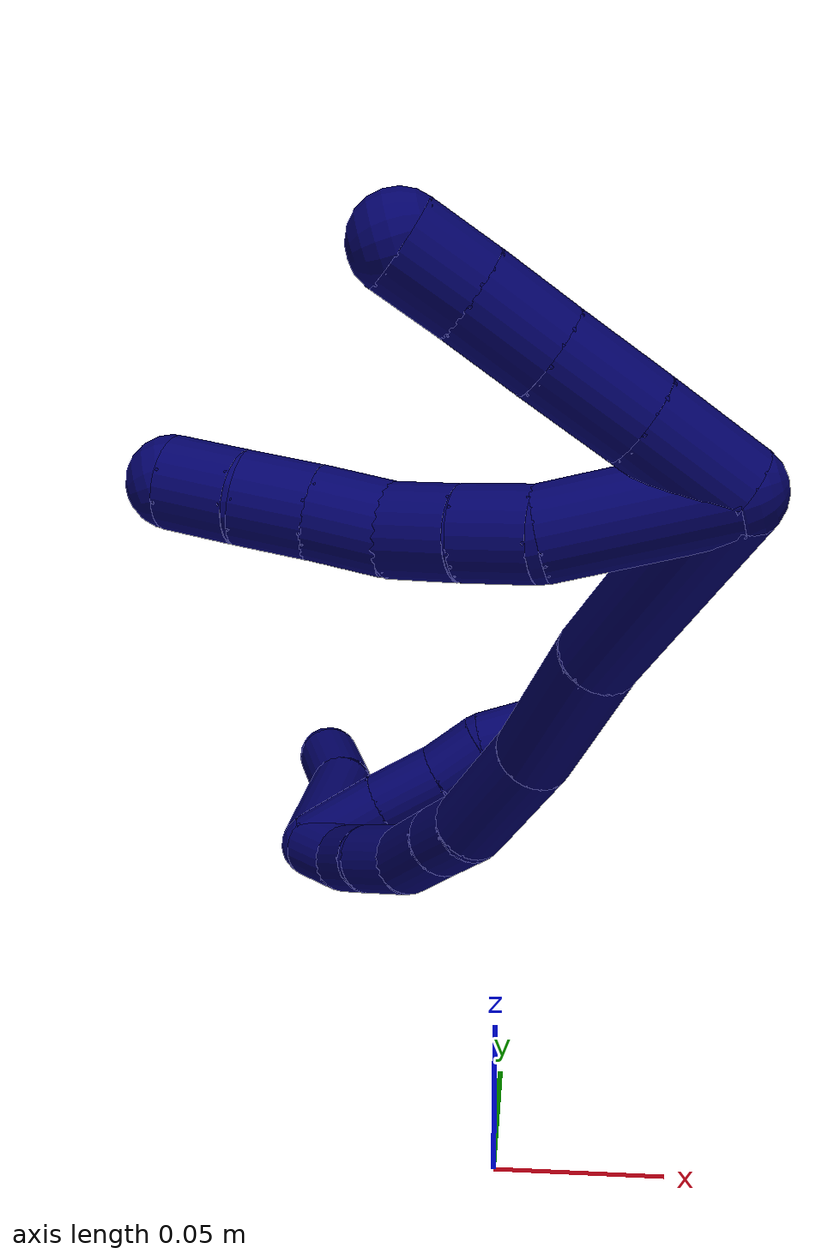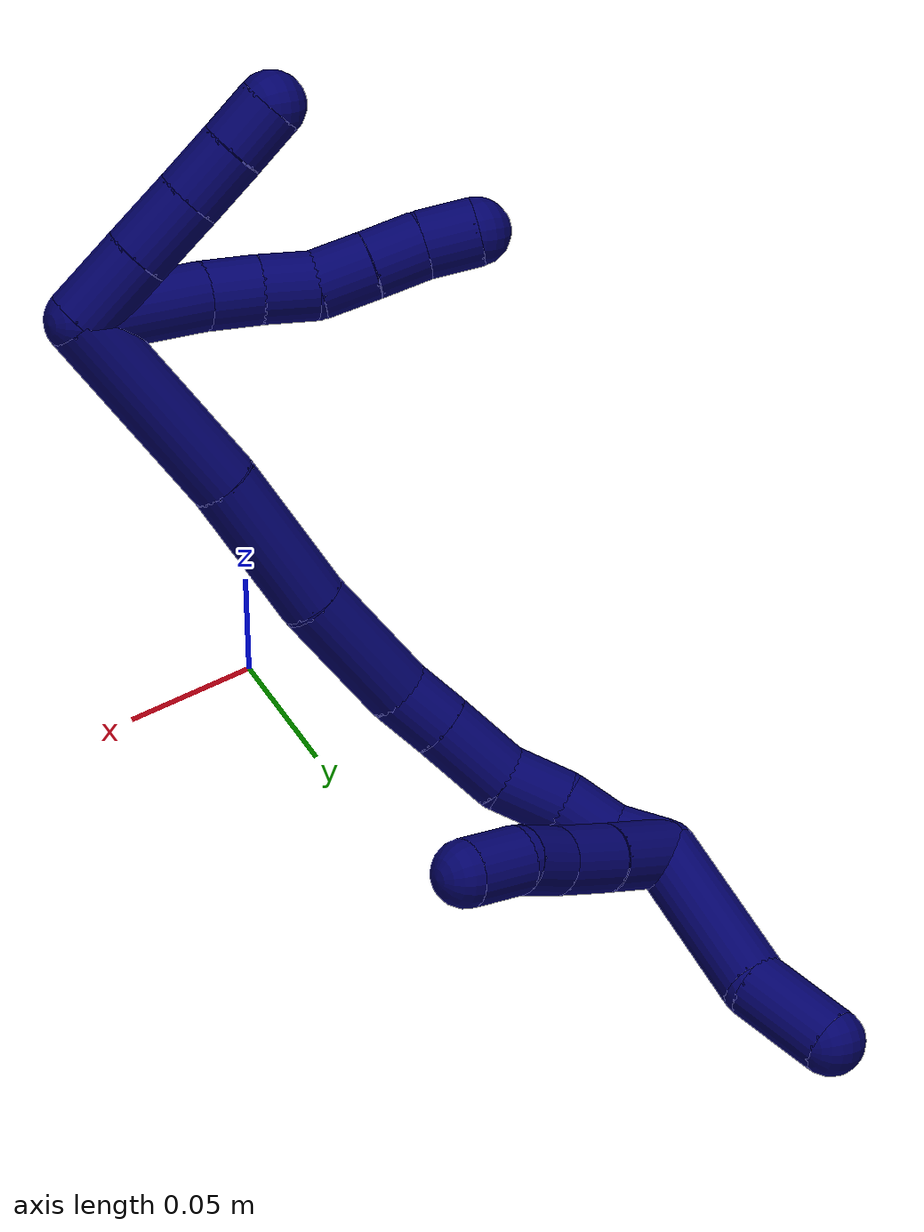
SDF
<sdf version="1.7">
 <world name="default">
  <model name="7">
   <static>0</static>
   <link name="7">
    <collision name="collision-cylinder-e_1_2_8">
     <pose>-0.000875 0.001724 -0.024406 -3.07107 -0.035742 0.937873</pose>
     <geometry><cylinder><radius>0.0125</radius><length>0.048965</length></cylinder></geometry>
     <surface>
      <friction><ode><mu>1.16</mu><mu2>1.16</mu2><slip1>0</slip1><slip2>0</slip2></ode></friction>
      <contact><ode><kp>1e+06</kp><kd>1</kd><max_vel>0</max_vel><min_depth>0.001</min_depth></ode></contact>
     </surface>
    </collision>
    <visual name="visual-cylinder-e_1_2_8">
     <pose>-0.000875 0.001724 -0.024406 -3.07107 -0.035742 0.937873</pose>
     <geometry><cylinder><radius>0.0125</radius><length>0.048965</length></cylinder></geometry>
     <material><ambient>0.003922 0 0.403922 1</ambient></material>
    </visual>
    <collision name="collision-cylinder-e_2_8_9">
     <pose>-0.002466 0.00724 -0.058411 -2.76538 -0.069292 0.360207</pose>
     <geometry><cylinder><radius>0.0125</radius><length>0.020692</length></cylinder></geometry>
     <surface>
      <friction><ode><mu>1.16</mu><mu2>1.16</mu2><slip1>0</slip1><slip2>0</slip2></ode></friction>
      <contact><ode><kp>1e+06</kp><kd>1</kd><max_vel>0</max_vel><min_depth>0.001</min_depth></ode></contact>
     </surface>
    </collision>
    <visual name="visual-cylinder-e_2_8_9">
     <pose>-0.002466 0.00724 -0.058411 -2.76538 -0.069292 0.360207</pose>
     <geometry><cylinder><radius>0.0125</radius><length>0.020692</length></cylinder></geometry>
     <material><ambient>0.003922 0 0.403922 1</ambient></material>
    </visual>
    <collision name="collision-cylinder-e_3_9_10">
     <pose>-0.003609 0.015275 -0.077078 -2.70395 -0.042628 0.191136</pose>
     <geometry><cylinder><radius>0.0125</radius><length>0.02004</length></cylinder></geometry>
     <surface>
      <friction><ode><mu>1.16</mu><mu2>1.16</mu2><slip1>0</slip1><slip2>0</slip2></ode></friction>
      <contact><ode><kp>1e+06</kp><kd>1</kd><max_vel>0</max_vel><min_depth>0.001</min_depth></ode></contact>
     </surface>
    </collision>
    <visual name="visual-cylinder-e_3_9_10">
     <pose>-0.003609 0.015275 -0.077078 -2.70395 -0.042628 0.191136</pose>
     <geometry><cylinder><radius>0.0125</radius><length>0.02004</length></cylinder></geometry>
     <material><ambient>0.003922 0 0.403922 1</ambient></material>
    </visual>
    <collision name="collision-cylinder-e_4_10_11">
     <pose>-0.007287 0.02327 -0.094994 -2.74052 -0.326128 1.36088</pose>
     <geometry><cylinder><radius>0.0125</radius><length>0.02029</length></cylinder></geometry>
     <surface>
      <friction><ode><mu>1.16</mu><mu2>1.16</mu2><slip1>0</slip1><slip2>0</slip2></ode></friction>
      <contact><ode><kp>1e+06</kp><kd>1</kd><max_vel>0</max_vel><min_depth>0.001</min_depth></ode></contact>
     </surface>
    </collision>
    <visual name="visual-cylinder-e_4_10_11">
     <pose>-0.007287 0.02327 -0.094994 -2.74052 -0.326128 1.36088</pose>
     <geometry><cylinder><radius>0.0125</radius><length>0.02029</length></cylinder></geometry>
     <material><ambient>0.003922 0 0.403922 1</ambient></material>
    </visual>
    <collision name="collision-cylinder-e_5_11_12">
     <pose>-0.013747 0.030381 -0.112697 -2.77904 -0.326791 1.46507</pose>
     <geometry><cylinder><radius>0.0125</radius><length>0.020002</length></cylinder></geometry>
     <surface>
      <friction><ode><mu>1.16</mu><mu2>1.16</mu2><slip1>0</slip1><slip2>0</slip2></ode></friction>
      <contact><ode><kp>1e+06</kp><kd>1</kd><max_vel>0</max_vel><min_depth>0.001</min_depth></ode></contact>
     </surface>
    </collision>
    <visual name="visual-cylinder-e_5_11_12">
     <pose>-0.013747 0.030381 -0.112697 -2.77904 -0.326791 1.46507</pose>
     <geometry><cylinder><radius>0.0125</radius><length>0.020002</length></cylinder></geometry>
     <material><ambient>0.003922 0 0.403922 1</ambient></material>
    </visual>
    <collision name="collision-cylinder-e_6_12_6">
     <pose>-0.019275 0.038134 -0.130238 -2.67321 -0.233725 0.914598</pose>
     <geometry><cylinder><radius>0.0125</radius><length>0.020011</length></cylinder></geometry>
     <surface>
      <friction><ode><mu>1.16</mu><mu2>1.16</mu2><slip1>0</slip1><slip2>0</slip2></ode></friction>
      <contact><ode><kp>1e+06</kp><kd>1</kd><max_vel>0</max_vel><min_depth>0.001</min_depth></ode></contact>
     </surface>
    </collision>
    <visual name="visual-cylinder-e_6_12_6">
     <pose>-0.019275 0.038134 -0.130238 -2.67321 -0.233725 0.914598</pose>
     <geometry><cylinder><radius>0.0125</radius><length>0.020011</length></cylinder></geometry>
     <material><ambient>0.003922 0 0.403922 1</ambient></material>
    </visual>
    <collision name="collision-cylinder-e_1_2_13">
     <pose>-0.011291 0.00438 -0.008862 -2.68254 -0.851686 2.1903</pose>
     <geometry><cylinder><radius>0.0125</radius><length>0.030013</length></cylinder></geometry>
     <surface>
      <friction><ode><mu>1.16</mu><mu2>1.16</mu2><slip1>0</slip1><slip2>0</slip2></ode></friction>
      <contact><ode><kp>1e+06</kp><kd>1</kd><max_vel>0</max_vel><min_depth>0.001</min_depth></ode></contact>
     </surface>
    </collision>
    <visual name="visual-cylinder-e_1_2_13">
     <pose>-0.011291 0.00438 -0.008862 -2.68254 -0.851686 2.1903</pose>
     <geometry><cylinder><radius>0.0125</radius><length>0.030013</length></cylinder></geometry>
     <material><ambient>0.003922 0 0.403922 1</ambient></material>
    </visual>
    <collision name="collision-cylinder-e_2_13_14">
     <pose>-0.032649 0.012634 -0.025823 -2.69548 -0.842524 2.20436</pose>
     <geometry><cylinder><radius>0.0125</radius><length>0.026978</length></cylinder></geometry>
     <surface>
      <friction><ode><mu>1.16</mu><mu2>1.16</mu2><slip1>0</slip1><slip2>0</slip2></ode></friction>
      <contact><ode><kp>1e+06</kp><kd>1</kd><max_vel>0</max_vel><min_depth>0.001</min_depth></ode></contact>
     </surface>
    </collision>
    <visual name="visual-cylinder-e_2_13_14">
     <pose>-0.032649 0.012634 -0.025823 -2.69548 -0.842524 2.20436</pose>
     <geometry><cylinder><radius>0.0125</radius><length>0.026978</length></cylinder></geometry>
     <material><ambient>0.003922 0 0.403922 1</ambient></material>
    </visual>
    <collision name="collision-cylinder-e_3_14_15">
     <pose>-0.051382 0.019791 -0.040704 -2.69072 -0.855129 2.20906</pose>
     <geometry><cylinder><radius>0.0125</radius><length>0.022967</length></cylinder></geometry>
     <surface>
      <friction><ode><mu>1.16</mu><mu2>1.16</mu2><slip1>0</slip1><slip2>0</slip2></ode></friction>
      <contact><ode><kp>1e+06</kp><kd>1</kd><max_vel>0</max_vel><min_depth>0.001</min_depth></ode></contact>
     </surface>
    </collision>
    <visual name="visual-cylinder-e_3_14_15">
     <pose>-0.051382 0.019791 -0.040704 -2.69072 -0.855129 2.20906</pose>
     <geometry><cylinder><radius>0.0125</radius><length>0.022967</length></cylinder></geometry>
     <material><ambient>0.003922 0 0.403922 1</ambient></material>
    </visual>
    <collision name="collision-cylinder-e_4_15_5">
     <pose>-0.067615 0.025602 -0.053549 -2.74656 -0.855778 2.31458</pose>
     <geometry><cylinder><radius>0.0125</radius><length>0.020042</length></cylinder></geometry>
     <surface>
      <friction><ode><mu>1.16</mu><mu2>1.16</mu2><slip1>0</slip1><slip2>0</slip2></ode></friction>
      <contact><ode><kp>1e+06</kp><kd>1</kd><max_vel>0</max_vel><min_depth>0.001</min_depth></ode></contact>
     </surface>
    </collision>
    <visual name="visual-cylinder-e_4_15_5">
     <pose>-0.067615 0.025602 -0.053549 -2.74656 -0.855778 2.31458</pose>
     <geometry><cylinder><radius>0.0125</radius><length>0.020042</length></cylinder></geometry>
     <material><ambient>0.003922 0 0.403922 1</ambient></material>
    </visual>
    <collision name="collision-cylinder-e_1_2_16">
     <pose>0.030469 0.011152 -0.023169 -2.69299 0.869861 -2.22868</pose>
     <geometry><cylinder><radius>0.0125</radius><length>0.079738</length></cylinder></geometry>
     <surface>
      <friction><ode><mu>1.16</mu><mu2>1.16</mu2><slip1>0</slip1><slip2>0</slip2></ode></friction>
      <contact><ode><kp>1e+06</kp><kd>1</kd><max_vel>0</max_vel><min_depth>0.001</min_depth></ode></contact>
     </surface>
    </collision>
    <visual name="visual-cylinder-e_1_2_16">
     <pose>0.030469 0.011152 -0.023169 -2.69299 0.869861 -2.22868</pose>
     <geometry><cylinder><radius>0.0125</radius><length>0.079738</length></cylinder></geometry>
     <material><ambient>0.003922 0 0.403922 1</ambient></material>
    </visual>
    <collision name="collision-cylinder-e_2_16_17">
     <pose>0.08373 0.029441 -0.061084 -2.69083 0.947554 -2.30059</pose>
     <geometry><cylinder><radius>0.0125</radius><length>0.056137</length></cylinder></geometry>
     <surface>
      <friction><ode><mu>1.16</mu><mu2>1.16</mu2><slip1>0</slip1><slip2>0</slip2></ode></friction>
      <contact><ode><kp>1e+06</kp><kd>1</kd><max_vel>0</max_vel><min_depth>0.001</min_depth></ode></contact>
     </surface>
    </collision>
    <visual name="visual-cylinder-e_2_16_17">
     <pose>0.08373 0.029441 -0.061084 -2.69083 0.947554 -2.30059</pose>
     <geometry><cylinder><radius>0.0125</radius><length>0.056137</length></cylinder></geometry>
     <material><ambient>0.003922 0 0.403922 1</ambient></material>
    </visual>
    <collision name="collision-cylinder-e_3_17_18">
     <pose>0.124662 0.042255 -0.09094 -2.78218 0.843648 -2.37229</pose>
     <geometry><cylinder><radius>0.0125</radius><length>0.048563</length></cylinder></geometry>
     <surface>
      <friction><ode><mu>1.16</mu><mu2>1.16</mu2><slip1>0</slip1><slip2>0</slip2></ode></friction>
      <contact><ode><kp>1e+06</kp><kd>1</kd><max_vel>0</max_vel><min_depth>0.001</min_depth></ode></contact>
     </surface>
    </collision>
    <visual name="visual-cylinder-e_3_17_18">
     <pose>0.124662 0.042255 -0.09094 -2.78218 0.843648 -2.37229</pose>
     <geometry><cylinder><radius>0.0125</radius><length>0.048563</length></cylinder></geometry>
     <material><ambient>0.003922 0 0.403922 1</ambient></material>
    </visual>
    <collision name="collision-cylinder-e_4_18_19">
     <pose>0.149409 0.05241 -0.112572 -2.54006 0.695846 -1.72654</pose>
     <geometry><cylinder><radius>0.0125</radius><length>0.020616</length></cylinder></geometry>
     <surface>
      <friction><ode><mu>1.16</mu><mu2>1.16</mu2><slip1>0</slip1><slip2>0</slip2></ode></friction>
      <contact><ode><kp>1e+06</kp><kd>1</kd><max_vel>0</max_vel><min_depth>0.001</min_depth></ode></contact>
     </surface>
    </collision>
    <visual name="visual-cylinder-e_4_18_19">
     <pose>0.149409 0.05241 -0.112572 -2.54006 0.695846 -1.72654</pose>
     <geometry><cylinder><radius>0.0125</radius><length>0.020616</length></cylinder></geometry>
     <material><ambient>0.003922 0 0.403922 1</ambient></material>
    </visual>
    <collision name="collision-cylinder-e_5_19_20">
     <pose>0.165785 0.063487 -0.128177 -2.51312 0.716012 -1.71109</pose>
     <geometry><cylinder><radius>0.0125</radius><length>0.029763</length></cylinder></geometry>
     <surface>
      <friction><ode><mu>1.16</mu><mu2>1.16</mu2><slip1>0</slip1><slip2>0</slip2></ode></friction>
      <contact><ode><kp>1e+06</kp><kd>1</kd><max_vel>0</max_vel><min_depth>0.001</min_depth></ode></contact>
     </surface>
    </collision>
    <visual name="visual-cylinder-e_5_19_20">
     <pose>0.165785 0.063487 -0.128177 -2.51312 0.716012 -1.71109</pose>
     <geometry><cylinder><radius>0.0125</radius><length>0.029763</length></cylinder></geometry>
     <material><ambient>0.003922 0 0.403922 1</ambient></material>
    </visual>
    <collision name="collision-cylinder-e_6_20_21">
     <pose>0.180149 0.076811 -0.145645 -2.46577 0.40406 -1.05551</pose>
     <geometry><cylinder><radius>0.0125</radius><length>0.02338</length></cylinder></geometry>
     <surface>
      <friction><ode><mu>1.16</mu><mu2>1.16</mu2><slip1>0</slip1><slip2>0</slip2></ode></friction>
      <contact><ode><kp>1e+06</kp><kd>1</kd><max_vel>0</max_vel><min_depth>0.001</min_depth></ode></contact>
     </surface>
    </collision>
    <visual name="visual-cylinder-e_6_20_21">
     <pose>0.180149 0.076811 -0.145645 -2.46577 0.40406 -1.05551</pose>
     <geometry><cylinder><radius>0.0125</radius><length>0.02338</length></cylinder></geometry>
     <material><ambient>0.003922 0 0.403922 1</ambient></material>
    </visual>
    <collision name="collision-cylinder-e_7_21_22">
     <pose>0.190318 0.090231 -0.160257 -2.3199 0.54741 -1.14495</pose>
     <geometry><cylinder><radius>0.0125</radius><length>0.021416</length></cylinder></geometry>
     <surface>
      <friction><ode><mu>1.16</mu><mu2>1.16</mu2><slip1>0</slip1><slip2>0</slip2></ode></friction>
      <contact><ode><kp>1e+06</kp><kd>1</kd><max_vel>0</max_vel><min_depth>0.001</min_depth></ode></contact>
     </surface>
    </collision>
    <visual name="visual-cylinder-e_7_21_22">
     <pose>0.190318 0.090231 -0.160257 -2.3199 0.54741 -1.14495</pose>
     <geometry><cylinder><radius>0.0125</radius><length>0.021416</length></cylinder></geometry>
     <material><ambient>0.003922 0 0.403922 1</ambient></material>
    </visual>
    <collision name="collision-cylinder-e_8_22_1">
     <pose>0.197915 0.104316 -0.173206 -2.30897 0.199839 -0.445936</pose>
     <geometry><cylinder><radius>0.0125</radius><length>0.020387</length></cylinder></geometry>
     <surface>
      <friction><ode><mu>1.16</mu><mu2>1.16</mu2><slip1>0</slip1><slip2>0</slip2></ode></friction>
      <contact><ode><kp>1e+06</kp><kd>1</kd><max_vel>0</max_vel><min_depth>0.001</min_depth></ode></contact>
     </surface>
    </collision>
    <visual name="visual-cylinder-e_8_22_1">
     <pose>0.197915 0.104316 -0.173206 -2.30897 0.199839 -0.445936</pose>
     <geometry><cylinder><radius>0.0125</radius><length>0.020387</length></cylinder></geometry>
     <material><ambient>0.003922 0 0.403922 1</ambient></material>
    </visual>
    <collision name="collision-cylinder-e_1_1_23">
     <pose>0.215027 0.140266 -0.178667 -1.52663 0.485621 -0.465398</pose>
     <geometry><cylinder><radius>0.0125</radius><length>0.06465</length></cylinder></geometry>
     <surface>
      <friction><ode><mu>1.16</mu><mu2>1.16</mu2><slip1>0</slip1><slip2>0</slip2></ode></friction>
      <contact><ode><kp>1e+06</kp><kd>1</kd><max_vel>0</max_vel><min_depth>0.001</min_depth></ode></contact>
     </surface>
    </collision>
    <visual name="visual-cylinder-e_1_1_23">
     <pose>0.215027 0.140266 -0.178667 -1.52663 0.485621 -0.465398</pose>
     <geometry><cylinder><radius>0.0125</radius><length>0.06465</length></cylinder></geometry>
     <material><ambient>0.003922 0 0.403922 1</ambient></material>
    </visual>
    <collision name="collision-cylinder-e_2_23_4">
     <pose>0.236276 0.184741 -0.182007 -1.85228 0.356043 -0.469814</pose>
     <geometry><cylinder><radius>0.0125</radius><length>0.03535</length></cylinder></geometry>
     <surface>
      <friction><ode><mu>1.16</mu><mu2>1.16</mu2><slip1>0</slip1><slip2>0</slip2></ode></friction>
      <contact><ode><kp>1e+06</kp><kd>1</kd><max_vel>0</max_vel><min_depth>0.001</min_depth></ode></contact>
     </surface>
    </collision>
    <visual name="visual-cylinder-e_2_23_4">
     <pose>0.236276 0.184741 -0.182007 -1.85228 0.356043 -0.469814</pose>
     <geometry><cylinder><radius>0.0125</radius><length>0.03535</length></cylinder></geometry>
     <material><ambient>0.003922 0 0.403922 1</ambient></material>
    </visual>
    <collision name="collision-cylinder-e_1_1_24">
     <pose>0.196708 0.114032 -0.164494 -0.149564 -0.204073 0.015343</pose>
     <geometry><cylinder><radius>0.0125</radius><length>0.031882</length></cylinder></geometry>
     <surface>
      <friction><ode><mu>1.16</mu><mu2>1.16</mu2><slip1>0</slip1><slip2>0</slip2></ode></friction>
      <contact><ode><kp>1e+06</kp><kd>1</kd><max_vel>0</max_vel><min_depth>0.001</min_depth></ode></contact>
     </surface>
    </collision>
    <visual name="visual-cylinder-e_1_1_24">
     <pose>0.196708 0.114032 -0.164494 -0.149564 -0.204073 0.015343</pose>
     <geometry><cylinder><radius>0.0125</radius><length>0.031882</length></cylinder></geometry>
     <material><ambient>0.003922 0 0.403922 1</ambient></material>
    </visual>
    <collision name="collision-cylinder-e_2_24_25">
     <pose>0.190969 0.11744 -0.136759 -0.087728 -0.20045 0.008828</pose>
     <geometry><cylinder><radius>0.0125</radius><length>0.025197</length></cylinder></geometry>
     <surface>
      <friction><ode><mu>1.16</mu><mu2>1.16</mu2><slip1>0</slip1><slip2>0</slip2></ode></friction>
      <contact><ode><kp>1e+06</kp><kd>1</kd><max_vel>0</max_vel><min_depth>0.001</min_depth></ode></contact>
     </surface>
    </collision>
    <visual name="visual-cylinder-e_2_24_25">
     <pose>0.190969 0.11744 -0.136759 -0.087728 -0.20045 0.008828</pose>
     <geometry><cylinder><radius>0.0125</radius><length>0.025197</length></cylinder></geometry>
     <material><ambient>0.003922 0 0.403922 1</ambient></material>
    </visual>
    <collision name="collision-cylinder-e_3_25_26">
     <pose>0.185598 0.12023 -0.114991 -0.17848 -0.289144 0.026052</pose>
     <geometry><cylinder><radius>0.0125</radius><length>0.020076</length></cylinder></geometry>
     <surface>
      <friction><ode><mu>1.16</mu><mu2>1.16</mu2><slip1>0</slip1><slip2>0</slip2></ode></friction>
      <contact><ode><kp>1e+06</kp><kd>1</kd><max_vel>0</max_vel><min_depth>0.001</min_depth></ode></contact>
     </surface>
    </collision>
    <visual name="visual-cylinder-e_3_25_26">
     <pose>0.185598 0.12023 -0.114991 -0.17848 -0.289144 0.026052</pose>
     <geometry><cylinder><radius>0.0125</radius><length>0.020076</length></cylinder></geometry>
     <material><ambient>0.003922 0 0.403922 1</ambient></material>
    </visual>
    <collision name="collision-cylinder-e_4_26_3">
     <pose>0.182754 0.121963 -0.0941 -0.002155 0.001544 -2e-06</pose>
     <geometry><cylinder><radius>0.0125</radius><length>0.022844</length></cylinder></geometry>
     <surface>
      <friction><ode><mu>1.16</mu><mu2>1.16</mu2><slip1>0</slip1><slip2>0</slip2></ode></friction>
      <contact><ode><kp>1e+06</kp><kd>1</kd><max_vel>0</max_vel><min_depth>0.001</min_depth></ode></contact>
     </surface>
    </collision>
    <visual name="visual-cylinder-e_4_26_3">
     <pose>0.182754 0.121963 -0.0941 -0.002155 0.001544 -2e-06</pose>
     <geometry><cylinder><radius>0.0125</radius><length>0.022844</length></cylinder></geometry>
     <material><ambient>0.003922 0 0.403922 1</ambient></material>
    </visual>
    <collision name="collision-sphere-3">
     <pose>0.182771 0.121987 -0.082678 0 -0 0</pose>
     <geometry><sphere><radius>0.0125</radius></sphere></geometry>
     <surface>
      <friction><ode><mu>1.16</mu><mu2>1.16</mu2><slip1>0</slip1><slip2>0</slip2></ode></friction>
      <contact><ode><kp>1e+06</kp><kd>1</kd><max_vel>0</max_vel><min_depth>0.001</min_depth></ode></contact>
     </surface>
    </collision>
    <visual name="visual-sphere-3">
     <pose>0.182771 0.121987 -0.082678 0 -0 0</pose>
     <geometry><sphere><radius>0.0125</radius></sphere></geometry>
     <material><ambient>0.003922 0 0.403922 1</ambient></material>
    </visual>
    <collision name="collision-sphere-26">
     <pose>0.182736 0.121938 -0.105522 0 -0 0</pose>
     <geometry><sphere><radius>0.0125</radius></sphere></geometry>
     <surface>
      <friction><ode><mu>1.16</mu><mu2>1.16</mu2><slip1>0</slip1><slip2>0</slip2></ode></friction>
      <contact><ode><kp>1e+06</kp><kd>1</kd><max_vel>0</max_vel><min_depth>0.001</min_depth></ode></contact>
     </surface>
    </collision>
    <visual name="visual-sphere-26">
     <pose>0.182736 0.121938 -0.105522 0 -0 0</pose>
     <geometry><sphere><radius>0.0125</radius></sphere></geometry>
     <material><ambient>0.003922 0 0.403922 1</ambient></material>
    </visual>
    <collision name="collision-sphere-25">
     <pose>0.188461 0.118522 -0.12446 0 -0 0</pose>
     <geometry><sphere><radius>0.0125</radius></sphere></geometry>
     <surface>
      <friction><ode><mu>1.16</mu><mu2>1.16</mu2><slip1>0</slip1><slip2>0</slip2></ode></friction>
      <contact><ode><kp>1e+06</kp><kd>1</kd><max_vel>0</max_vel><min_depth>0.001</min_depth></ode></contact>
     </surface>
    </collision>
    <visual name="visual-sphere-25">
     <pose>0.188461 0.118522 -0.12446 0 -0 0</pose>
     <geometry><sphere><radius>0.0125</radius></sphere></geometry>
     <material><ambient>0.003922 0 0.403922 1</ambient></material>
    </visual>
    <collision name="collision-sphere-24">
     <pose>0.193478 0.116358 -0.149058 0 -0 0</pose>
     <geometry><sphere><radius>0.0125</radius></sphere></geometry>
     <surface>
      <friction><ode><mu>1.16</mu><mu2>1.16</mu2><slip1>0</slip1><slip2>0</slip2></ode></friction>
      <contact><ode><kp>1e+06</kp><kd>1</kd><max_vel>0</max_vel><min_depth>0.001</min_depth></ode></contact>
     </surface>
    </collision>
    <visual name="visual-sphere-24">
     <pose>0.193478 0.116358 -0.149058 0 -0 0</pose>
     <geometry><sphere><radius>0.0125</radius></sphere></geometry>
     <material><ambient>0.003922 0 0.403922 1</ambient></material>
    </visual>
    <collision name="collision-sphere-4">
     <pose>0.242437 0.200655 -0.186609 0 -0 0</pose>
     <geometry><sphere><radius>0.0125</radius></sphere></geometry>
     <surface>
      <friction><ode><mu>1.16</mu><mu2>1.16</mu2><slip1>0</slip1><slip2>0</slip2></ode></friction>
      <contact><ode><kp>1e+06</kp><kd>1</kd><max_vel>0</max_vel><min_depth>0.001</min_depth></ode></contact>
     </surface>
    </collision>
    <visual name="visual-sphere-4">
     <pose>0.242437 0.200655 -0.186609 0 -0 0</pose>
     <geometry><sphere><radius>0.0125</radius></sphere></geometry>
     <material><ambient>0.003922 0 0.403922 1</ambient></material>
    </visual>
    <collision name="collision-sphere-23">
     <pose>0.230115 0.168826 -0.177405 0 -0 0</pose>
     <geometry><sphere><radius>0.0125</radius></sphere></geometry>
     <surface>
      <friction><ode><mu>1.16</mu><mu2>1.16</mu2><slip1>0</slip1><slip2>0</slip2></ode></friction>
      <contact><ode><kp>1e+06</kp><kd>1</kd><max_vel>0</max_vel><min_depth>0.001</min_depth></ode></contact>
     </surface>
    </collision>
    <visual name="visual-sphere-23">
     <pose>0.230115 0.168826 -0.177405 0 -0 0</pose>
     <geometry><sphere><radius>0.0125</radius></sphere></geometry>
     <material><ambient>0.003922 0 0.403922 1</ambient></material>
    </visual>
    <collision name="collision-sphere-1">
     <pose>0.199939 0.111706 -0.17993 0 -0 0</pose>
     <geometry><sphere><radius>0.0125</radius></sphere></geometry>
     <surface>
      <friction><ode><mu>1.16</mu><mu2>1.16</mu2><slip1>0</slip1><slip2>0</slip2></ode></friction>
      <contact><ode><kp>1e+06</kp><kd>1</kd><max_vel>0</max_vel><min_depth>0.001</min_depth></ode></contact>
     </surface>
    </collision>
    <visual name="visual-sphere-1">
     <pose>0.199939 0.111706 -0.17993 0 -0 0</pose>
     <geometry><sphere><radius>0.0125</radius></sphere></geometry>
     <material><ambient>0.003922 0 0.403922 1</ambient></material>
    </visual>
    <collision name="collision-sphere-22">
     <pose>0.195892 0.096926 -0.166483 0 -0 0</pose>
     <geometry><sphere><radius>0.0125</radius></sphere></geometry>
     <surface>
      <friction><ode><mu>1.16</mu><mu2>1.16</mu2><slip1>0</slip1><slip2>0</slip2></ode></friction>
      <contact><ode><kp>1e+06</kp><kd>1</kd><max_vel>0</max_vel><min_depth>0.001</min_depth></ode></contact>
     </surface>
    </collision>
    <visual name="visual-sphere-22">
     <pose>0.195892 0.096926 -0.166483 0 -0 0</pose>
     <geometry><sphere><radius>0.0125</radius></sphere></geometry>
     <material><ambient>0.003922 0 0.403922 1</ambient></material>
    </visual>
    <collision name="collision-sphere-21">
     <pose>0.184745 0.083535 -0.15403 0 -0 0</pose>
     <geometry><sphere><radius>0.0125</radius></sphere></geometry>
     <surface>
      <friction><ode><mu>1.16</mu><mu2>1.16</mu2><slip1>0</slip1><slip2>0</slip2></ode></friction>
      <contact><ode><kp>1e+06</kp><kd>1</kd><max_vel>0</max_vel><min_depth>0.001</min_depth></ode></contact>
     </surface>
    </collision>
    <visual name="visual-sphere-21">
     <pose>0.184745 0.083535 -0.15403 0 -0 0</pose>
     <geometry><sphere><radius>0.0125</radius></sphere></geometry>
     <material><ambient>0.003922 0 0.403922 1</ambient></material>
    </visual>
    <collision name="collision-sphere-12">
     <pose>-0.016958 0.03374 -0.121553 0 -0 0</pose>
     <geometry><sphere><radius>0.0125</radius></sphere></geometry>
     <surface>
      <friction><ode><mu>1.16</mu><mu2>1.16</mu2><slip1>0</slip1><slip2>0</slip2></ode></friction>
      <contact><ode><kp>1e+06</kp><kd>1</kd><max_vel>0</max_vel><min_depth>0.001</min_depth></ode></contact>
     </surface>
    </collision>
    <visual name="visual-sphere-12">
     <pose>-0.016958 0.03374 -0.121553 0 -0 0</pose>
     <geometry><sphere><radius>0.0125</radius></sphere></geometry>
     <material><ambient>0.003922 0 0.403922 1</ambient></material>
    </visual>
    <collision name="collision-sphere-11">
     <pose>-0.010537 0.027022 -0.103841 0 -0 0</pose>
     <geometry><sphere><radius>0.0125</radius></sphere></geometry>
     <surface>
      <friction><ode><mu>1.16</mu><mu2>1.16</mu2><slip1>0</slip1><slip2>0</slip2></ode></friction>
      <contact><ode><kp>1e+06</kp><kd>1</kd><max_vel>0</max_vel><min_depth>0.001</min_depth></ode></contact>
     </surface>
    </collision>
    <visual name="visual-sphere-11">
     <pose>-0.010537 0.027022 -0.103841 0 -0 0</pose>
     <geometry><sphere><radius>0.0125</radius></sphere></geometry>
     <material><ambient>0.003922 0 0.403922 1</ambient></material>
    </visual>
    <collision name="collision-sphere-10">
     <pose>-0.004036 0.019518 -0.086146 0 -0 0</pose>
     <geometry><sphere><radius>0.0125</radius></sphere></geometry>
     <surface>
      <friction><ode><mu>1.16</mu><mu2>1.16</mu2><slip1>0</slip1><slip2>0</slip2></ode></friction>
      <contact><ode><kp>1e+06</kp><kd>1</kd><max_vel>0</max_vel><min_depth>0.001</min_depth></ode></contact>
     </surface>
    </collision>
    <visual name="visual-sphere-10">
     <pose>-0.004036 0.019518 -0.086146 0 -0 0</pose>
     <geometry><sphere><radius>0.0125</radius></sphere></geometry>
     <material><ambient>0.003922 0 0.403922 1</ambient></material>
    </visual>
    <collision name="collision-sphere-9">
     <pose>-0.003182 0.011032 -0.068011 0 -0 0</pose>
     <geometry><sphere><radius>0.0125</radius></sphere></geometry>
     <surface>
      <friction><ode><mu>1.16</mu><mu2>1.16</mu2><slip1>0</slip1><slip2>0</slip2></ode></friction>
      <contact><ode><kp>1e+06</kp><kd>1</kd><max_vel>0</max_vel><min_depth>0.001</min_depth></ode></contact>
     </surface>
    </collision>
    <visual name="visual-sphere-9">
     <pose>-0.003182 0.011032 -0.068011 0 -0 0</pose>
     <geometry><sphere><radius>0.0125</radius></sphere></geometry>
     <material><ambient>0.003922 0 0.403922 1</ambient></material>
    </visual>
    <collision name="collision-sphere-2">
     <geometry><sphere><radius>0.0125</radius></sphere></geometry>
     <surface>
      <friction><ode><mu>1.16</mu><mu2>1.16</mu2><slip1>0</slip1><slip2>0</slip2></ode></friction>
      <contact><ode><kp>1e+06</kp><kd>1</kd><max_vel>0</max_vel><min_depth>0.001</min_depth></ode></contact>
     </surface>
    </collision>
    <visual name="visual-sphere-2">
     <geometry><sphere><radius>0.0125</radius></sphere></geometry>
     <material><ambient>0.003922 0 0.403922 1</ambient></material>
    </visual>
    <collision name="collision-sphere-19">
     <pose>0.156017 0.056887 -0.119095 0 -0 0</pose>
     <geometry><sphere><radius>0.0125</radius></sphere></geometry>
     <surface>
      <friction><ode><mu>1.16</mu><mu2>1.16</mu2><slip1>0</slip1><slip2>0</slip2></ode></friction>
      <contact><ode><kp>1e+06</kp><kd>1</kd><max_vel>0</max_vel><min_depth>0.001</min_depth></ode></contact>
     </surface>
    </collision>
    <visual name="visual-sphere-19">
     <pose>0.156017 0.056887 -0.119095 0 -0 0</pose>
     <geometry><sphere><radius>0.0125</radius></sphere></geometry>
     <material><ambient>0.003922 0 0.403922 1</ambient></material>
    </visual>
    <collision name="collision-sphere-8">
     <pose>-0.00175 0.003448 -0.048812 0 -0 0</pose>
     <geometry><sphere><radius>0.0125</radius></sphere></geometry>
     <surface>
      <friction><ode><mu>1.16</mu><mu2>1.16</mu2><slip1>0</slip1><slip2>0</slip2></ode></friction>
      <contact><ode><kp>1e+06</kp><kd>1</kd><max_vel>0</max_vel><min_depth>0.001</min_depth></ode></contact>
     </surface>
    </collision>
    <visual name="visual-sphere-8">
     <pose>-0.00175 0.003448 -0.048812 0 -0 0</pose>
     <geometry><sphere><radius>0.0125</radius></sphere></geometry>
     <material><ambient>0.003922 0 0.403922 1</ambient></material>
    </visual>
    <collision name="collision-sphere-6">
     <pose>-0.021592 0.042528 -0.138923 0 -0 0</pose>
     <geometry><sphere><radius>0.0125</radius></sphere></geometry>
     <surface>
      <friction><ode><mu>1.16</mu><mu2>1.16</mu2><slip1>0</slip1><slip2>0</slip2></ode></friction>
      <contact><ode><kp>1e+06</kp><kd>1</kd><max_vel>0</max_vel><min_depth>0.001</min_depth></ode></contact>
     </surface>
    </collision>
    <visual name="visual-sphere-6">
     <pose>-0.021592 0.042528 -0.138923 0 -0 0</pose>
     <geometry><sphere><radius>0.0125</radius></sphere></geometry>
     <material><ambient>0.003922 0 0.403922 1</ambient></material>
    </visual>
    <collision name="collision-sphere-13">
     <pose>-0.022582 0.00876 -0.017723 0 -0 0</pose>
     <geometry><sphere><radius>0.0125</radius></sphere></geometry>
     <surface>
      <friction><ode><mu>1.16</mu><mu2>1.16</mu2><slip1>0</slip1><slip2>0</slip2></ode></friction>
      <contact><ode><kp>1e+06</kp><kd>1</kd><max_vel>0</max_vel><min_depth>0.001</min_depth></ode></contact>
     </surface>
    </collision>
    <visual name="visual-sphere-13">
     <pose>-0.022582 0.00876 -0.017723 0 -0 0</pose>
     <geometry><sphere><radius>0.0125</radius></sphere></geometry>
     <material><ambient>0.003922 0 0.403922 1</ambient></material>
    </visual>
    <collision name="collision-sphere-14">
     <pose>-0.042716 0.016508 -0.033922 0 -0 0</pose>
     <geometry><sphere><radius>0.0125</radius></sphere></geometry>
     <surface>
      <friction><ode><mu>1.16</mu><mu2>1.16</mu2><slip1>0</slip1><slip2>0</slip2></ode></friction>
      <contact><ode><kp>1e+06</kp><kd>1</kd><max_vel>0</max_vel><min_depth>0.001</min_depth></ode></contact>
     </surface>
    </collision>
    <visual name="visual-sphere-14">
     <pose>-0.042716 0.016508 -0.033922 0 -0 0</pose>
     <geometry><sphere><radius>0.0125</radius></sphere></geometry>
     <material><ambient>0.003922 0 0.403922 1</ambient></material>
    </visual>
    <collision name="collision-sphere-15">
     <pose>-0.060048 0.023074 -0.047485 0 -0 0</pose>
     <geometry><sphere><radius>0.0125</radius></sphere></geometry>
     <surface>
      <friction><ode><mu>1.16</mu><mu2>1.16</mu2><slip1>0</slip1><slip2>0</slip2></ode></friction>
      <contact><ode><kp>1e+06</kp><kd>1</kd><max_vel>0</max_vel><min_depth>0.001</min_depth></ode></contact>
     </surface>
    </collision>
    <visual name="visual-sphere-15">
     <pose>-0.060048 0.023074 -0.047485 0 -0 0</pose>
     <geometry><sphere><radius>0.0125</radius></sphere></geometry>
     <material><ambient>0.003922 0 0.403922 1</ambient></material>
    </visual>
    <collision name="collision-sphere-5">
     <pose>-0.075181 0.028131 -0.059613 0 -0 0</pose>
     <geometry><sphere><radius>0.0125</radius></sphere></geometry>
     <surface>
      <friction><ode><mu>1.16</mu><mu2>1.16</mu2><slip1>0</slip1><slip2>0</slip2></ode></friction>
      <contact><ode><kp>1e+06</kp><kd>1</kd><max_vel>0</max_vel><min_depth>0.001</min_depth></ode></contact>
     </surface>
    </collision>
    <visual name="visual-sphere-5">
     <pose>-0.075181 0.028131 -0.059613 0 -0 0</pose>
     <geometry><sphere><radius>0.0125</radius></sphere></geometry>
     <material><ambient>0.003922 0 0.403922 1</ambient></material>
    </visual>
    <collision name="collision-sphere-16">
     <pose>0.060939 0.022304 -0.046337 0 -0 0</pose>
     <geometry><sphere><radius>0.0125</radius></sphere></geometry>
     <surface>
      <friction><ode><mu>1.16</mu><mu2>1.16</mu2><slip1>0</slip1><slip2>0</slip2></ode></friction>
      <contact><ode><kp>1e+06</kp><kd>1</kd><max_vel>0</max_vel><min_depth>0.001</min_depth></ode></contact>
     </surface>
    </collision>
    <visual name="visual-sphere-16">
     <pose>0.060939 0.022304 -0.046337 0 -0 0</pose>
     <geometry><sphere><radius>0.0125</radius></sphere></geometry>
     <material><ambient>0.003922 0 0.403922 1</ambient></material>
    </visual>
    <collision name="collision-sphere-17">
     <pose>0.106522 0.036578 -0.07583 0 -0 0</pose>
     <geometry><sphere><radius>0.0125</radius></sphere></geometry>
     <surface>
      <friction><ode><mu>1.16</mu><mu2>1.16</mu2><slip1>0</slip1><slip2>0</slip2></ode></friction>
      <contact><ode><kp>1e+06</kp><kd>1</kd><max_vel>0</max_vel><min_depth>0.001</min_depth></ode></contact>
     </surface>
    </collision>
    <visual name="visual-sphere-17">
     <pose>0.106522 0.036578 -0.07583 0 -0 0</pose>
     <geometry><sphere><radius>0.0125</radius></sphere></geometry>
     <material><ambient>0.003922 0 0.403922 1</ambient></material>
    </visual>
    <collision name="collision-sphere-18">
     <pose>0.142802 0.047932 -0.106049 0 -0 0</pose>
     <geometry><sphere><radius>0.0125</radius></sphere></geometry>
     <surface>
      <friction><ode><mu>1.16</mu><mu2>1.16</mu2><slip1>0</slip1><slip2>0</slip2></ode></friction>
      <contact><ode><kp>1e+06</kp><kd>1</kd><max_vel>0</max_vel><min_depth>0.001</min_depth></ode></contact>
     </surface>
    </collision>
    <visual name="visual-sphere-18">
     <pose>0.142802 0.047932 -0.106049 0 -0 0</pose>
     <geometry><sphere><radius>0.0125</radius></sphere></geometry>
     <material><ambient>0.003922 0 0.403922 1</ambient></material>
    </visual>
    <collision name="collision-sphere-20">
     <pose>0.175553 0.070088 -0.137259 0 -0 0</pose>
     <geometry><sphere><radius>0.0125</radius></sphere></geometry>
     <surface>
      <friction><ode><mu>1.16</mu><mu2>1.16</mu2><slip1>0</slip1><slip2>0</slip2></ode></friction>
      <contact><ode><kp>1e+06</kp><kd>1</kd><max_vel>0</max_vel><min_depth>0.001</min_depth></ode></contact>
     </surface>
    </collision>
    <visual name="visual-sphere-20">
     <pose>0.175553 0.070088 -0.137259 0 -0 0</pose>
     <geometry><sphere><radius>0.0125</radius></sphere></geometry>
     <material><ambient>0.003922 0 0.403922 1</ambient></material>
    </visual>
    <inertial>
     <pose>0.093373 0.059514 -0.094716 0 -0 0</pose>
     <mass>0.75</mass>
     <inertia>
      <ixx>-1.3e-05</ixx>
      <ixy>0</ixy>
      <ixz>0</ixz>
      <iyy>6.1e-05</iyy>
      <iyz>0</iyz>
      <izz>-0.000147</izz>
     </inertia>
    </inertial>
   </link>
   <pose>0.05719 -0.007792 0.208762 0.881685 1.07526 0.975244</pose>
  </model>
 </world>
</sdf>
